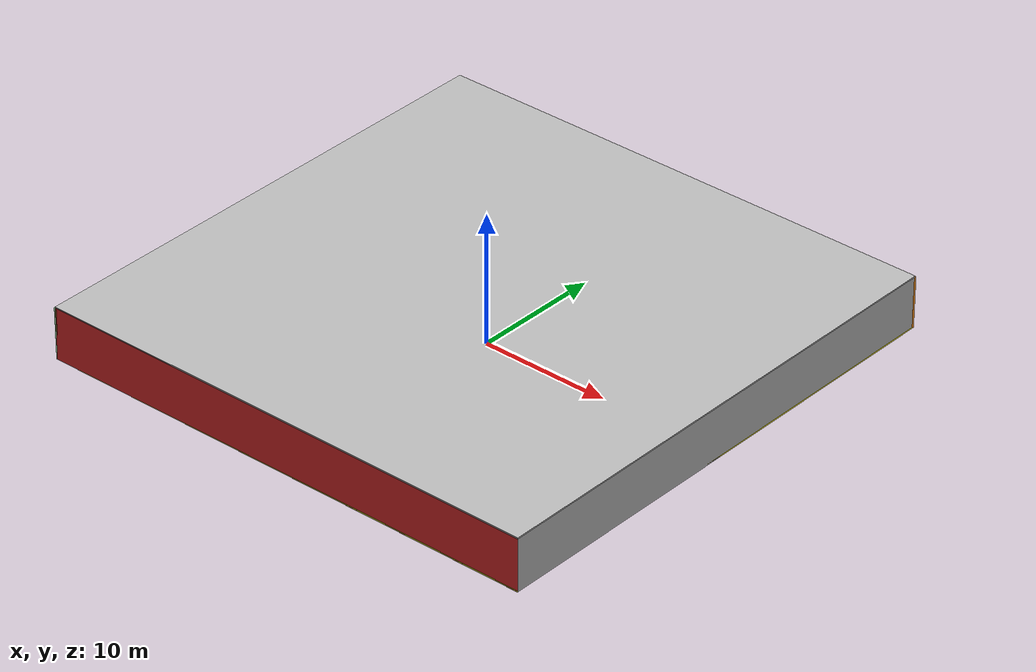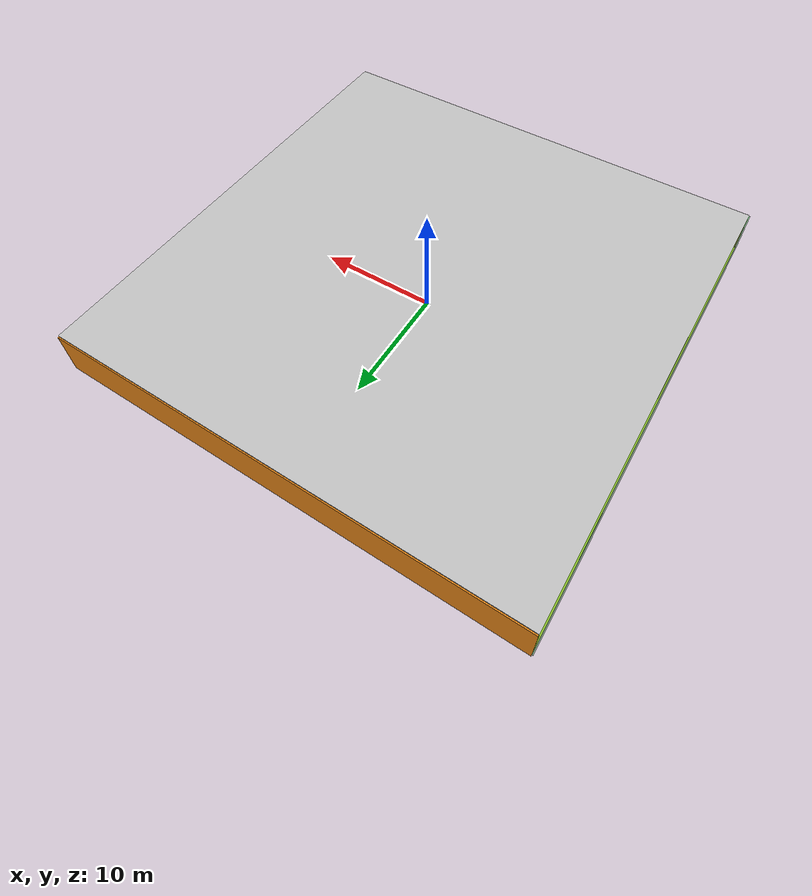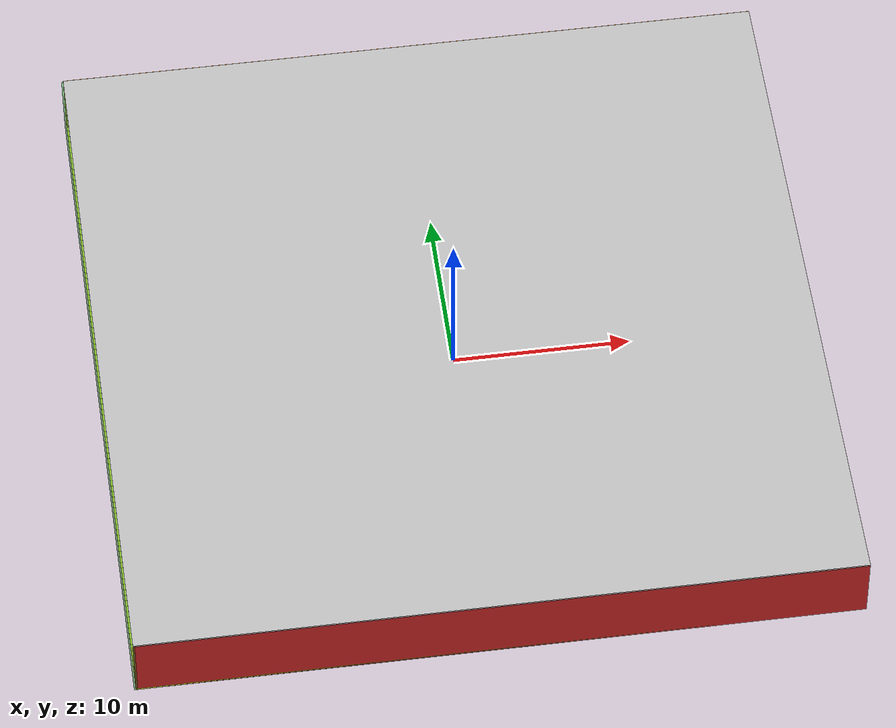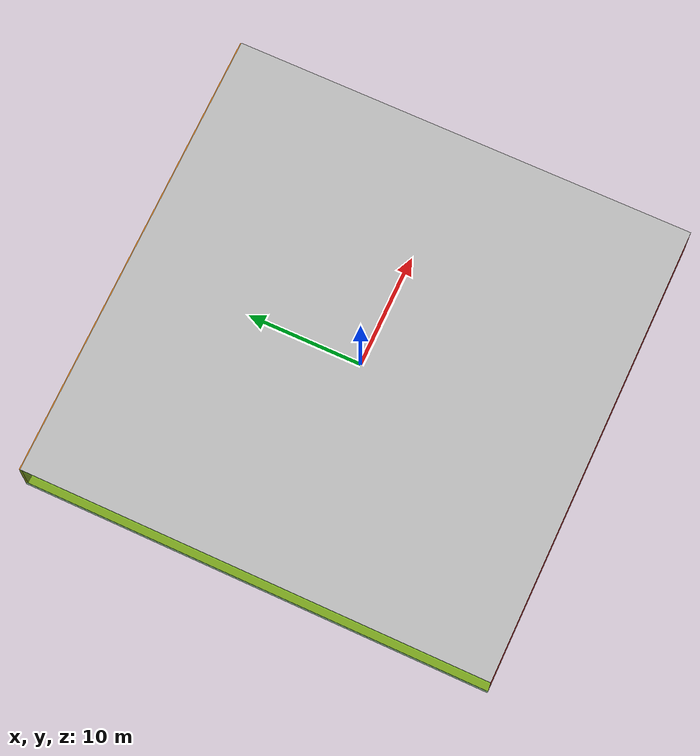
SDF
<sdf version="1.4">
 <world name="default">
  <physics type="ode">
   <max_step_size>0.001</max_step_size>
   <real_time_factor>1</real_time_factor>
   <real_time_update_rate>1000</real_time_update_rate>
   <gravity>0 0 -9.8</gravity>
  </physics>
  <scene><ambient>0.4 0.4 0.4 1</ambient><background>0.7 0.7 0.7 1</background><shadows>1</shadows></scene>
  <model name="Surrounding">
   <static>1</static>
   <link name="Ceiling">
    <collision name="Ceiling_Collision"><geometry><box><size>40 40 0.1</size></box></geometry></collision>
    <visual name="Ceiling_Visual">
     <geometry><box><size>40 40 0.1</size></box></geometry>
     <material>
      <script><uri>file://media/materials/scripts/gazebo.material</uri><name>Gazebo/JointAnchor</name></script>
     </material>
    </visual>
    <pose>0 0 4.05 0 0 0</pose>
   </link>
   <link name="Wall_South">
    <collision name="Wall_South_Collision">
     <geometry><box><size>40 0 4</size></box></geometry>
     <pose>0 0 2 0 -0 0</pose>
    </collision>
    <visual name="Wall_South_Visual">
     <pose>0 0 2 0 -0 0</pose>
     <geometry><box><size>40 0 4</size></box></geometry>
     <material>
      <script><uri>file://media/materials/scripts/gazebo.material</uri><name>Gazebo/RedGlow</name></script>
     </material>
    </visual>
    <velocity_decay><linear>0</linear><angular>0</angular></velocity_decay>
    <pose>0 -20 0 0 -0 0</pose>
   </link>
   <link name="Wall_East">
    <collision name="Wall_21_Collision">
     <geometry><box><size>40 0 4</size></box></geometry>
     <pose>0 0 2 0 -0 0</pose>
    </collision>
    <visual name="Wall_21_Visual">
     <pose>0 0 2 0 -0 0</pose>
     <geometry><box><size>40 0 4</size></box></geometry>
     <material>
      <script><uri>file://media/materials/scripts/gazebo.material</uri><name>Gazebo/PioneerBody</name></script>
     </material>
    </visual>
    <velocity_decay><linear>0</linear><angular>0</angular></velocity_decay>
    <pose>20 0 0 0 -0 1.5708</pose>
   </link>
   <link name="Wall_North">
    <collision name="Wall_22_Collision">
     <geometry><box><size>40 0.2 4</size></box></geometry>
     <pose>0 0 2 0 -0 0</pose>
    </collision>
    <visual name="Wall_22_Visual">
     <pose>0 0 2 0 -0 0</pose>
     <geometry><box><size>40 0.2 4</size></box></geometry>
     <material>
      <script><uri>file://media/materials/scripts/gazebo.material</uri><name>Gazebo/Orange</name></script>
     </material>
    </visual>
    <velocity_decay><linear>0</linear><angular>0</angular></velocity_decay>
    <pose>0 20 0 0 -0 0</pose>
   </link>
   <link name="Wall_West">
    <collision name="Wall_23_Collision">
     <geometry><box><size>40 0.2 4</size></box></geometry>
     <pose>0 0 2 0 -0 0</pose>
    </collision>
    <visual name="Wall_23_Visual">
     <pose>0 0 2 0 -0 0</pose>
     <geometry><box><size>40 0.2 4</size></box></geometry>
     <material>
      <script><uri>file://media/materials/scripts/gazebo.material</uri><name>Gazebo/GreenTransparent</name></script>
     </material>
    </visual>
    <velocity_decay><linear>0</linear><angular>0</angular></velocity_decay>
    <pose>-20 0 0 0 0 -1.5708</pose>
   </link>
   <link name="Ground_link">
    <collision name="collision">
     <pose>0 0 .05 0 -0 0</pose>
     <geometry><box><size>40 40 0.1</size></box></geometry>
    </collision>
    <visual name="visual">
     <pose>0 0 .05 0 -0 0</pose>
     <geometry><box><size>40 40 0.1</size></box></geometry>
     <material>
      <script><uri>file://media/materials/scripts/gazebo.material</uri><name>Gazebo/Yellow</name></script>
     </material>
    </visual>
   </link>
   <static>1</static>
  </model>
  <spherical_coordinates>
   <surface_model>EARTH_WGS84</surface_model>
   <latitude_deg>0</latitude_deg>
   <longitude_deg>0</longitude_deg>
   <elevation>0</elevation>
   <heading_deg>0</heading_deg>
  </spherical_coordinates>
  <light name="lightball_0" type="diffuse">
   <diffuse>0.8 0.8 0.8 1</diffuse>
   <specular>0.2 0.2 0.2 1</specular>
   <attenuation>
    <range>100</range>
    <constant>0.7</constant>
    <linear>0.01</linear>
    <quadratic>0.001</quadratic>
   </attenuation>
   <direction>-0.5 0.1 -0.9</direction>
   <pose>-9.07051310048 0.877539892069 3.77353230106 0 0 0</pose>
  </light>
  <light name="lightball_1" type="diffuse">
   <diffuse>0.8 0.8 0.8 1</diffuse>
   <specular>0.2 0.2 0.2 1</specular>
   <attenuation>
    <range>100</range>
    <constant>0.7</constant>
    <linear>0.01</linear>
    <quadratic>0.001</quadratic>
   </attenuation>
   <direction>-0.5 0.1 -0.9</direction>
   <pose>16.4147989304 7.24076755388 0.551292455659 0 0 0</pose>
  </light>
  <light name="lightball_2" type="diffuse">
   <diffuse>0.8 0.8 0.8 1</diffuse>
   <specular>0.2 0.2 0.2 1</specular>
   <attenuation>
    <range>100</range>
    <constant>0.7</constant>
    <linear>0.01</linear>
    <quadratic>0.001</quadratic>
   </attenuation>
   <direction>-0.5 0.1 -0.9</direction>
   <pose>-6.07736930264 3.86262775281 3.77886473709 0 0 0</pose>
  </light>
  <light name="lightball_3" type="diffuse">
   <diffuse>0.8 0.8 0.8 1</diffuse>
   <specular>0.2 0.2 0.2 1</specular>
   <attenuation>
    <range>100</range>
    <constant>0.7</constant>
    <linear>0.01</linear>
    <quadratic>0.001</quadratic>
   </attenuation>
   <direction>-0.5 0.1 -0.9</direction>
   <pose>-14.8889787999 -10.5176842485 0.605756140621 0 0 0</pose>
  </light>
  <light name="lightball_4" type="diffuse">
   <diffuse>0.8 0.8 0.8 1</diffuse>
   <specular>0.2 0.2 0.2 1</specular>
   <attenuation>
    <range>100</range>
    <constant>0.7</constant>
    <linear>0.01</linear>
    <quadratic>0.001</quadratic>
   </attenuation>
   <direction>-0.5 0.1 -0.9</direction>
   <pose>16.2510341632 -0.104610030205 3.51503776642 0 0 0</pose>
  </light>
  <light name="lightball_5" type="diffuse">
   <diffuse>0.8 0.8 0.8 1</diffuse>
   <specular>0.2 0.2 0.2 1</specular>
   <attenuation>
    <range>100</range>
    <constant>0.7</constant>
    <linear>0.01</linear>
    <quadratic>0.001</quadratic>
   </attenuation>
   <direction>-0.5 0.1 -0.9</direction>
   <pose>-4.24422330856 14.5645753764 2.86882366072 0 0 0</pose>
  </light>
  <light name="lightball_6" type="diffuse">
   <diffuse>0.8 0.8 0.8 1</diffuse>
   <specular>0.2 0.2 0.2 1</specular>
   <attenuation>
    <range>100</range>
    <constant>0.7</constant>
    <linear>0.01</linear>
    <quadratic>0.001</quadratic>
   </attenuation>
   <direction>-0.5 0.1 -0.9</direction>
   <pose>15.0339209006 -2.6284496735 3.87614585471 0 0 0</pose>
  </light>
  <light name="lightball_7" type="diffuse">
   <diffuse>0.8 0.8 0.8 1</diffuse>
   <specular>0.2 0.2 0.2 1</specular>
   <attenuation>
    <range>100</range>
    <constant>0.7</constant>
    <linear>0.01</linear>
    <quadratic>0.001</quadratic>
   </attenuation>
   <direction>-0.5 0.1 -0.9</direction>
   <pose>1.76957786773 -0.196432659958 3.80138176453 0 0 0</pose>
  </light>
  <light name="lightball_8" type="diffuse">
   <diffuse>0.8 0.8 0.8 1</diffuse>
   <specular>0.2 0.2 0.2 1</specular>
   <attenuation>
    <range>100</range>
    <constant>0.7</constant>
    <linear>0.01</linear>
    <quadratic>0.001</quadratic>
   </attenuation>
   <direction>-0.5 0.1 -0.9</direction>
   <pose>-15.769967732 -1.16181668866 2.80372769277 0 0 0</pose>
  </light>
  <light name="lightball_9" type="diffuse">
   <diffuse>0.8 0.8 0.8 1</diffuse>
   <specular>0.2 0.2 0.2 1</specular>
   <attenuation>
    <range>100</range>
    <constant>0.7</constant>
    <linear>0.01</linear>
    <quadratic>0.001</quadratic>
   </attenuation>
   <direction>-0.5 0.1 -0.9</direction>
   <pose>-19.2627916683 12.5014485128 2.68582645305 0 0 0</pose>
  </light>
  <light name="lightball_10" type="diffuse">
   <diffuse>0.8 0.8 0.8 1</diffuse>
   <specular>0.2 0.2 0.2 1</specular>
   <attenuation>
    <range>100</range>
    <constant>0.7</constant>
    <linear>0.01</linear>
    <quadratic>0.001</quadratic>
   </attenuation>
   <direction>-0.5 0.1 -0.9</direction>
   <pose>-13.7116452908 -0.816947527934 3.20002335863 0 0 0</pose>
  </light>
  <light name="lightball_11" type="diffuse">
   <diffuse>0.8 0.8 0.8 1</diffuse>
   <specular>0.2 0.2 0.2 1</specular>
   <attenuation>
    <range>100</range>
    <constant>0.7</constant>
    <linear>0.01</linear>
    <quadratic>0.001</quadratic>
   </attenuation>
   <direction>-0.5 0.1 -0.9</direction>
   <pose>-16.5656668659 0.943624743751 3.07858523649 0 0 0</pose>
  </light>
  <light name="lightball_12" type="diffuse">
   <diffuse>0.8 0.8 0.8 1</diffuse>
   <specular>0.2 0.2 0.2 1</specular>
   <attenuation>
    <range>100</range>
    <constant>0.7</constant>
    <linear>0.01</linear>
    <quadratic>0.001</quadratic>
   </attenuation>
   <direction>-0.5 0.1 -0.9</direction>
   <pose>-18.000463123 17.9758849042 1.46739588606 0 0 0</pose>
  </light>
  <light name="lightball_13" type="diffuse">
   <diffuse>0.8 0.8 0.8 1</diffuse>
   <specular>0.2 0.2 0.2 1</specular>
   <attenuation>
    <range>100</range>
    <constant>0.7</constant>
    <linear>0.01</linear>
    <quadratic>0.001</quadratic>
   </attenuation>
   <direction>-0.5 0.1 -0.9</direction>
   <pose>4.82571350589 14.6164068581 1.16833991005 0 0 0</pose>
  </light>
  <include>
   <uri>model://construction_cone</uri>
   <pose>-16.3808035284 -4.81938371465 0 0 0 2.93751459314</pose>
  </include>
  <include><uri>model://table</uri><pose>-7.87672704912 -7.4951010483 0 0 0 1.26690870953</pose></include>
  <include><uri>model://cabinet</uri><pose>-7.61106966732 -4.83868800362 0 0 0 1.49870532511</pose></include>
  <include><uri>model://cabinet</uri><pose>-8.6977565959 0.95329993859 0 0 0 0.676047582133</pose></include>
  <include><uri>model://cabinet</uri><pose>-8.51116886387 5.86005264436 0 0 0 0.0662165589047</pose></include>
  <include>
   <uri>model://construction_cone</uri>
   <pose>-4.38559028415 -17.6286329601 0 0 0 0.811165773336</pose>
  </include>
  <include>
   <uri>model://construction_cone</uri>
   <pose>-6.26439779982 11.767569698 0 0 0 0.44942443674</pose>
  </include>
  <include>
   <uri>model://robocup_3Dsim_goal</uri>
   <pose>-1.31856148306 -2.47755391574 0 0 0 1.23537655577</pose>
  </include>
  <include>
   <uri>model://robocup_3Dsim_goal</uri>
   <pose>-3.39618402275 0.593219062435 0 0 0 2.33445284403</pose>
  </include>
  <include><uri>model://cabinet</uri><pose>1.57316770228 -15.6078989813 0 0 0 1.87329055012</pose></include>
  <include><uri>model://cabinet</uri><pose>0.805204668143 -7.55315998791 0 0 0 0.748427528213</pose></include>
  <include>
   <uri>model://robocup_3Dsim_goal</uri>
   <pose>1.2011138614 12.1115917945 0 0 0 2.9944754235</pose>
  </include>
  <include>
   <uri>model://textured_shapes</uri>
   <pose>4.17960427374 14.9723523107 0 0 0 0.733897932433</pose>
  </include>
  <include>
   <uri>model://construction_cone</uri>
   <pose>6.74687704932 -8.92528908116 0 0 0 2.53936642789</pose>
  </include>
  <include>
   <uri>model://construction_cone</uri>
   <pose>6.01055879266 -3.14229083461 0 0 0 0.570331254948</pose>
  </include>
  <include>
   <uri>model://robocup_3Dsim_goal</uri>
   <pose>10.6625982755 -15.4032080725 0 0 0 1.43815780026</pose>
  </include>
  <include><uri>model://table</uri><pose>10.3518150053 0.677180123328 0 0 0 0.297399885324</pose></include>
  <include>
   <uri>model://construction_cone</uri>
   <pose>10.3929674028 3.96615696442 0 0 0 1.54570149574</pose>
  </include>
  <include>
   <uri>model://construction_cone</uri>
   <pose>9.42226652062 18.0874363651 0 0 0 0.883447017853</pose>
  </include>
  <include>
   <uri>model://robocup_3Dsim_goal</uri>
   <pose>12.9645985542 -16.4435923682 0 0 0 0.216648720456</pose>
  </include>
  <include>
   <uri>model://construction_cone</uri>
   <pose>12.6557029786 -4.77732203384 0 0 0 1.09488174597</pose>
  </include>
  <include><uri>model://table</uri><pose>16.0151228009 -9.59308326772 0 0 0 0.343964772162</pose></include>
  <include><uri>model://cabinet</uri><pose>16.2175487272 6.64041748267 0 0 0 0.966726167208</pose></include>
  <include><uri>model://cabinet</uri><pose>17.4927454537 12.0528219498 0 0 0 3.05095634984</pose></include>
 </world>
</sdf>

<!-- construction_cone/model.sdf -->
<sdf version="1.5">
  <model name="Construction Cone">
    <link name="link">
      <collision name="collision">
        <geometry>
          <mesh>
            <scale>10 10 10</scale>
            <uri>file://isr-testbed/construction_cone/meshes/construction_cone.dae</uri>
          </mesh>
        </geometry>
      </collision>
      <visual name="visual">
        <geometry>
          <mesh>
            <scale>10 10 10</scale>
            <uri>file://isr-testbed/construction_cone/meshes/construction_cone.dae</uri>
          </mesh>
        </geometry>
      </visual>
    </link>
  </model>
</sdf>

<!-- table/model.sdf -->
<sdf version="1.5">
  <model name="table">
    <static>true</static>
    <link name="link">
      <collision name="surface">
        <pose>0 0 1.0 0 0 0</pose>
        <geometry>
          <box>
            <size>1.5 0.8 0.03</size>
          </box>
        </geometry>
        <surface>
          <friction>
            <ode>
              <mu>0.6</mu>
              <mu2>0.6</mu2>
            </ode>
          </friction>
        </surface>
      </collision>
      <visual name="visual1">
        <pose>0 0 1.0 0 0 0</pose>
        <geometry>
          <box>
            <size>1.5 0.8 0.03</size>
          </box>
        </geometry>
        <material>
          <script>
            <uri>model://media/materials/scripts/gazebo.material</uri>
            <name>Gazebo/Wood</name>
          </script>
        </material>
      </visual>
      <collision name="front_left_leg">
        <pose>0.68 0.38 0.5 0 0 0</pose>
        <geometry>
          <cylinder>
            <radius>0.02</radius>
            <length>1.0</length>
          </cylinder>
        </geometry>
      </collision>
      <visual name="front_left_leg">
        <pose>0.68 0.38 0.5 0 0 0</pose>
        <geometry>
          <cylinder>
            <radius>0.02</radius>
            <length>1.0</length>
          </cylinder>
        </geometry>
        <material>
          <script>
            <uri>model://media/materials/scripts/gazebo.material</uri>
            <name>Gazebo/Grey</name>
          </script>
        </material>
      </visual>
      <collision name="front_right_leg">
        <pose>0.68 -0.38 0.5 0 0 0</pose>
        <geometry>
          <cylinder>
            <radius>0.02</radius>
            <length>1.0</length>
          </cylinder>
        </geometry>
      </collision>
      <visual name="front_right_leg">
        <pose>0.68 -0.38 0.5 0 0 0</pose>
        <geometry>
          <cylinder>
            <radius>0.02</radius>
            <length>1.0</length>
          </cylinder>
        </geometry>
        <material>
          <script>
            <uri>model://media/materials/scripts/gazebo.material</uri>
            <name>Gazebo/Grey</name>
          </script>
        </material>
      </visual>
      <collision name="back_right_leg">
        <pose>-0.68 -0.38 0.5 0 0 0</pose>
        <geometry>
          <cylinder>
            <radius>0.02</radius>
            <length>1.0</length>
          </cylinder>
        </geometry>
      </collision>
      <visual name="back_right_leg">
        <pose>-0.68 -0.38 0.5 0 0 0</pose>
        <geometry>
          <cylinder>
            <radius>0.02</radius>
            <length>1.0</length>
          </cylinder>
        </geometry>
        <material>
          <script>
            <uri>model://media/materials/scripts/gazebo.material</uri>
            <name>Gazebo/Grey</name>
          </script>
        </material>
      </visual>
      <collision name="back_left_leg">
        <pose>-0.68 0.38 0.5 0 0 0</pose>
        <geometry>
          <cylinder>
            <radius>0.02</radius>
            <length>1.0</length>
          </cylinder>
        </geometry>
      </collision>
      <visual name="back_left_leg">
        <pose>-0.68 0.38 0.5 0 0 0</pose>
        <geometry>
          <cylinder>
            <radius>0.02</radius>
            <length>1.0</length>
          </cylinder>
        </geometry>
        <material>
          <script>
            <uri>model://media/materials/scripts/gazebo.material</uri>
            <name>Gazebo/Grey</name>
          </script>
        </material>
      </visual>
    </link>
  </model>
</sdf>

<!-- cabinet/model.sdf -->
<sdf version="1.5">
  <model name="cabinet">
    <static>true</static>
    <link name="cabinet_bottom_plate">
      <inertial>
        <pose>0 0 -1 0 0 0</pose>
        <inertia>
          <ixx>2.050000</ixx>
          <ixy>0</ixy>
          <ixz>0</ixz>
          <iyy>2.050000</iyy>
          <iyz>0</iyz>
          <izz>2.050000</izz>
        </inertia>
        <mass>25.000000</mass>
      </inertial>
      <collision name="cabinet_bottom_plate_geom">
        <pose>0 0 0.010000 0 0 0</pose>
        <geometry>
          <box>
            <size>0.450000 0.450000 0.020000</size>
          </box>
        </geometry>
      </collision>
      <visual name="cabinet_bottom_plate_geom_visual">
        <pose>0 0 0.010000 0 0 0</pose>
        <geometry>
          <box>
            <size>0.450000 0.450000 0.020000</size>
          </box>
        </geometry>
        <material>
          <script>
            <uri>model://media/materials/scripts/gazebo.material</uri>
            <name>Gazebo/Wood</name>
          </script>
        </material>
      </visual>
      <collision name="cabinet_bottom_plate_geom_cabinet_back_plate">
        <pose>0.235000 0 0.510000 0 0 0</pose>
        <geometry>
          <box>
            <size>0.020000 0.450000 1.020000</size>
          </box>
        </geometry>
      </collision>
      <visual name="cabinet_bottom_plate_geom_cabinet_back_plate_visual">
        <pose>0.235000 0 0.510000 0 0 0</pose>
        <geometry>
          <box>
            <size>0.020000 0.450000 1.020000</size>
          </box>
        </geometry>
        <material>
          <script>
            <uri>model://media/materials/scripts/gazebo.material</uri>
            <name>Gazebo/Wood</name>
          </script>
        </material>
      </visual>
      <collision name="cabinet_bottom_plate_geom_cabinet_left_plate">
        <pose>0 0.235000 0.510000 0 0 0</pose>
        <geometry>
          <box>
            <size>0.450000 0.020000 1.020000</size>
          </box>
        </geometry>
      </collision>
      <visual name="cabinet_bottom_plate_geom_cabinet_left_plate_visual">
        <pose>0 0.235000 0.510000 0 0 0</pose>
        <geometry>
          <box>
            <size>0.450000 0.020000 1.020000</size>
          </box>
        </geometry>
        <material>
          <script>
            <uri>model://media/materials/scripts/gazebo.material</uri>
            <name>Gazebo/Wood</name>
          </script>
        </material>
      </visual>
      <collision name="cabinet_bottom_plate_geom_cabinet_middle_plate">
        <pose>0 0 0.510000 0 0 0</pose>
        <geometry>
          <box>
            <size>0.450000 0.450000 0.020000</size>
          </box>
        </geometry>
      </collision>
      <visual name="cabinet_bottom_plate_geom_cabinet_middle_plate_visual">
        <pose>0 0 0.510000 0 0 0</pose>
        <geometry>
          <box>
            <size>0.450000 0.450000 0.020000</size>
          </box>
        </geometry>
        <material>
          <script>
            <uri>model://media/materials/scripts/gazebo.material</uri>
            <name>Gazebo/Wood</name>
          </script>
        </material>
      </visual>
      <collision name="cabinet_bottom_plate_geom_cabinet_right_plate">
        <pose>0 -0.235000 0.510000 0 0 0</pose>
        <geometry>
          <box>
            <size>0.450000 0.020000 1.020000</size>
          </box>
        </geometry>
      </collision>
      <visual name="cabinet_bottom_plate_geom_cabinet_right_plate_visual">
        <pose>0 -0.235000 0.510000 0 0 0</pose>
        <geometry>
          <box>
            <size>0.450000 0.020000 1.020000</size>
          </box>
        </geometry>
        <material>
          <script>
            <uri>model://media/materials/scripts/gazebo.material</uri>
            <name>Gazebo/Wood</name>
          </script>
        </material>
      </visual>
      <collision name="cabinet_bottom_plate_geom_cabinet_top_plate">
        <pose>0 0 1.010000 0 0 0</pose>
        <geometry>
          <box>
            <size>0.450000 0.450000 0.020000</size>
          </box>
        </geometry>
      </collision>
      <visual name="cabinet_bottom_plate_geom_cabinet_top_plate_visual">
        <pose>0 0 1.010000 0 0 0</pose>
        <geometry>
          <box>
            <size>0.450000 0.450000 0.020000</size>
          </box>
        </geometry>
        <material>
          <script>
            <uri>model://media/materials/scripts/gazebo.material</uri>
            <name>Gazebo/Wood</name>
          </script>
        </material>
      </visual>
    </link>
  </model>
</sdf>

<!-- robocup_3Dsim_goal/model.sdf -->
<sdf version="1.5">
  <model name="robocup_3d_goal">
    <static>true</static>
    <link name="left_post">
      <pose>0 1.05 0.45 0 0 0</pose>
      <collision name="collision">
        <geometry>
          <cylinder>
            <radius>0.05</radius>
            <length>0.9</length>
          </cylinder>
        </geometry>
      </collision>
      <visual name="visual">
        <geometry>
          <cylinder>
            <radius>0.05</radius>
            <length>0.9</length>
          </cylinder>
        </geometry>
        <material>
          <script>
            <uri>file://media/materials/scripts/gazebo.material</uri>
            <name>Gazebo/ZincYellow</name>
          </script>
        </material>
      </visual>
    </link>
    <link name="left_support_horiz_lower">
      <pose>0.30 1.05 0.01 0 0 0</pose>
      <collision name="collision">
        <geometry>
          <box>
            <size>0.50 0.02 0.02</size>
          </box>
        </geometry>
      </collision>
      <visual name="visual">
        <geometry>
          <box>
            <size>0.50 0.02 0.02</size>
          </box>
        </geometry>
        <material>
          <script>
            <uri>file://media/materials/scripts/gazebo.material</uri>
            <name>Gazebo/White</name>
          </script>
        </material>
      </visual>
    </link>
    <link name="left_support_horiz_upper">
      <pose>0.30 1.05 0.79 0 0 0</pose>
      <collision name="collision">
        <geometry>
          <box>
            <size>0.50 0.02 0.02</size>
          </box>
        </geometry>
      </collision>
      <visual name="visual">
        <geometry>
          <box>
            <size>0.50 0.02 0.02</size>
          </box>
        </geometry>
        <material>
          <script>
            <uri>file://media/materials/scripts/gazebo.material</uri>
            <name>Gazebo/White</name>
          </script>
        </material>
      </visual>
    </link>
    <link name="left_support_vertical">
      <pose>0.56 1.05 0.4 0 1.5708 0</pose>
      <collision name="collision">
        <geometry>
          <box>
            <size>0.80 0.02 0.02</size>
          </box>
        </geometry>
      </collision>
      <visual name="visual">
        <geometry>
          <box>
            <size>0.80 0.02 0.02</size>
          </box>
        </geometry>
        <material>
          <script>
            <uri>file://media/materials/scripts/gazebo.material</uri>
            <name>Gazebo/White</name>
          </script>
        </material>
      </visual>
    </link>
    <link name="right_support_horiz_lower">
      <pose>0.30 -1.05 0.01 0 0 0</pose>
      <collision name="collision">
        <geometry>
          <box>
            <size>0.50 0.02 0.02</size>
          </box>
        </geometry>
      </collision>
      <visual name="visual">
        <geometry>
          <box>
            <size>0.50 0.02 0.02</size>
          </box>
        </geometry>
        <material>
          <script>
            <uri>file://media/materials/scripts/gazebo.material</uri>
            <name>Gazebo/White</name>
          </script>
        </material>
      </visual>
    </link>
    <link name="right_support_horiz_upper">
      <pose>0.30 -1.05 0.79 0 0 0</pose>
      <collision name="collision">
        <geometry>
          <box>
            <size>0.50 0.02 0.02</size>
          </box>
        </geometry>
      </collision>
      <visual name="visual">
        <geometry>
          <box>
            <size>0.50 0.02 0.02</size>
          </box>
        </geometry>
        <material>
          <script>
            <uri>file://media/materials/scripts/gazebo.material</uri>
            <name>Gazebo/White</name>
          </script>
        </material>
      </visual>
    </link>
    <link name="right_support_vertical">
      <pose>0.56 -1.05 0.4 0 1.5708 0</pose>
      <collision name="collision">
        <geometry>
          <box>
            <size>0.80 0.02 0.02</size>
          </box>
        </geometry>
      </collision>
      <visual name="visual">
        <geometry>
          <box>
            <size>0.80 0.02 0.02</size>
          </box>
        </geometry>
        <material>
          <script>
            <uri>file://media/materials/scripts/gazebo.material</uri>
            <name>Gazebo/White</name>
          </script>
        </material>
      </visual>
    </link>
    <link name="center_support_horiz_lower">
      <pose>0.56 0 0.01 0 1.5708 0</pose>
      <collision name="collision">
        <geometry>
          <box>
            <size>0.02 2.08 0.02</size>
          </box>
        </geometry>
      </collision>
      <visual name="visual">
        <geometry>
          <box>
            <size>0.02 2.08 0.02</size>
          </box>
        </geometry>
        <material>
          <script>
            <uri>file://media/materials/scripts/gazebo.material</uri>
            <name>Gazebo/White</name>
          </script>
        </material>
      </visual>
    </link>
    <link name="center_support_horiz_upper">
      <pose>0.56 0 0.79 0 1.5708 0</pose>
      <collision name="collision">
        <geometry>
          <box>
            <size>0.02 2.08 0.02</size>
          </box>
        </geometry>
      </collision>
      <visual name="visual">
        <geometry>
          <box>
            <size>0.02 2.08 0.02</size>
          </box>
        </geometry>
        <material>
          <script>
            <uri>file://media/materials/scripts/gazebo.material</uri>
            <name>Gazebo/White</name>
          </script>
        </material>
      </visual>
    </link>
    <link name="right_post">
      <pose>0 -1.05 0.45 0 0 0</pose>
      <collision name="collision">
        <geometry>
          <cylinder>
            <radius>0.05</radius>
            <length>0.9</length>
          </cylinder>
        </geometry>
      </collision>
      <visual name="visual">
        <geometry>
          <cylinder>
            <radius>0.05</radius>
            <length>0.9</length>
          </cylinder>
        </geometry>
        <material>
          <script>
            <uri>file://media/materials/scripts/gazebo.material</uri>
            <name>Gazebo/ZincYellow</name>
          </script>
        </material>
      </visual>
    </link>
    <link name="crossbar">
      <pose>0 0 0.85 1.57 1.57 0</pose>
      <collision name="collision">
        <geometry>
          <cylinder>
            <radius>0.05</radius>
            <length>2.0</length>
          </cylinder>
        </geometry>
      </collision>
      <visual name="visual">
        <geometry>
          <cylinder>
            <radius>0.05</radius>
            <length>2.0</length>
          </cylinder>
        </geometry>
        <material>
          <script>
            <uri>file://media/materials/scripts/gazebo.material</uri>
            <name>Gazebo/ZincYellow</name>
          </script>
        </material>
      </visual>
    </link>
    <link name="center_net">
      <pose>0.56 0 0.40 0 0 0</pose>
      <collision name="collision">
        <geometry>
          <box>
            <size>0.01 2.1 0.80</size>
          </box>
        </geometry>
      </collision>
      <visual name="visual">
        <geometry>
          <box>
            <size>0.01 2.1 0.80</size>
          </box>
        </geometry>
        <material>
          <script>
            <uri>model://../model_source/models/robocup09_spl_field/materials/scripts/</uri>
            <uri>model://../model_source/models/robocup09_spl_field/materials/textures/</uri>
            <name>RoboCup/Net</name>
          </script>
        </material>
      </visual>
    </link>
    <link name="left_net">
      <pose>0.30 1.05 0.40 0 0 0</pose>
      <collision name="collision">
        <geometry>
          <box>
            <size>0.50 0.01 0.76</size>
          </box>
        </geometry>
      </collision>
      <visual name="visual">
        <geometry>
          <box>
            <size>0.50 0.01 0.76</size>
          </box>
        </geometry>
        <material>
          <script>
            <uri>model://../model_source/models/robocup09_spl_field/materials/scripts/</uri>
            <uri>model://../model_source/models/robocup09_spl_field/materials/textures/</uri>
            <name>RoboCup/Net</name>
          </script>
        </material>
      </visual>
    </link>
    <link name="right_net">
      <pose>0.30 -1.05 0.40 0 0 0</pose>
      <collision name="collision">
        <geometry>
          <box>
            <size>0.50 0.01 0.76</size>
          </box>
        </geometry>
      </collision>
      <visual name="visual">
        <geometry>
          <box>
            <size>0.50 0.01 0.76</size>
          </box>
        </geometry>
        <material>
          <script>
            <uri>model://../model_source/models/robocup09_spl_field/materials/scripts/</uri>
            <uri>model://../model_source/models/robocup09_spl_field/materials/textures/</uri>
            <name>RoboCup/Net</name>
          </script>
        </material>
      </visual>
    </link>
  </model>
</sdf>

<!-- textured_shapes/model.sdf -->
<sdf version="1.6">
  <model name="textured_shapes">
    <pose>0 0 0.5 0 0 0</pose>
    <link name="box">
      <pose>0 -1.5 0 0 0 0</pose>
      <collision name="collision">
        <geometry>
          <box>
            <size>1 1 1</size>
          </box>
        </geometry>
      </collision>
      <visual name="visual">
        <geometry>
          <box>
            <size>1 1 1</size>
          </box>
        </geometry>
        <material>
          <script>
            <uri>model://../model_source/models/textured_shapes/materials/scripts</uri>
            <uri>model://../model_source/models/textured_shapes/materials/textures</uri>
            <name>TexturedShape/Squares</name>
          </script>
        </material>
      </visual>
    </link>
    <link name="sphere">
      <collision name="collision">
        <geometry>
          <sphere>
            <radius>0.5</radius>
          </sphere>
        </geometry>
      </collision>
      <visual name="visual">
        <geometry>
          <sphere>
            <radius>0.5</radius>
          </sphere>
        </geometry>
        <material>
          <script>
            <uri>model://../model_source/models/textured_shapes/materials/scripts</uri>
            <uri>model://../model_source/models/textured_shapes/materials/textures</uri>
            <name>TexturedShape/Squares</name>
          </script>
        </material>
      </visual>
    </link>
    <link name="cylinder">
      <pose>0 1.5 0 0 0 0</pose>
      <collision name="collision">
        <geometry>
          <cylinder>
            <radius>0.5</radius>
            <length>1</length>
          </cylinder>
        </geometry>
      </collision>
      <visual name="visual">
        <geometry>
          <cylinder>
            <radius>0.5</radius>
            <length>1</length>
          </cylinder>
        </geometry>
        <material>
          <script>
            <uri>model://../model_source/models/textured_shapes/materials/scripts</uri>
            <uri>model://../model_source/models/textured_shapes/materials/textures</uri>
            <name>TexturedShape/Squares</name>
          </script>
        </material>
      </visual>
    </link>
  </model>
</sdf>
